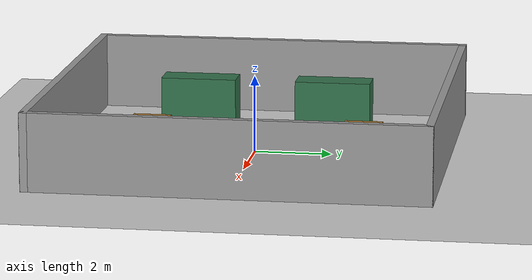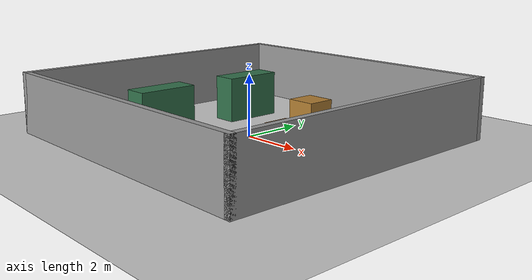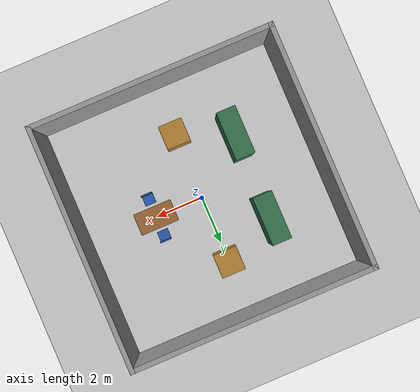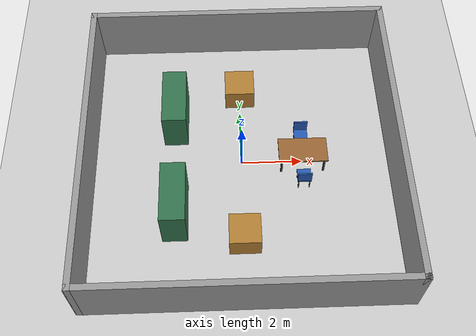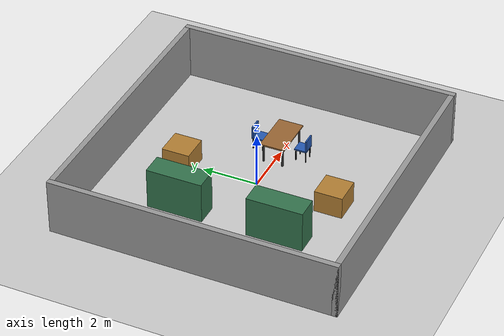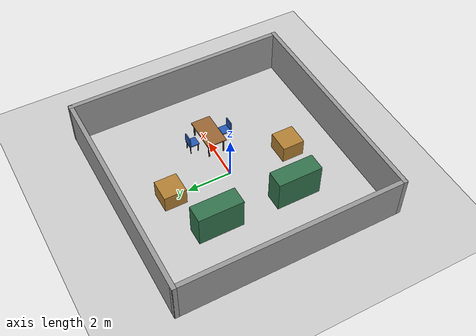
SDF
<?xml version="1.0" ?>
<sdf version="1.8">
  <world name="obstacles_world">
    <!-- GAZEBO HARMONIC WORLD SYSTEM PLUGINS                                  -->
    <plugin
      filename="gz-sim-physics-system"
      name="gz::sim::systems::Physics">
    </plugin>
    <plugin
      filename="gz-sim-user-commands-system"
      name="gz::sim::systems::UserCommands">
    </plugin>
    <plugin
      filename="gz-sim-scene-broadcaster-system"
      name="gz::sim::systems::SceneBroadcaster">
    </plugin>
    <plugin
      filename="gz-sim-sensors-system"
      name="gz::sim::systems::Sensors">
      <render_engine>ogre2</render_engine>
    </plugin>
    <plugin
      filename="gz-sim-imu-system"
      name="gz::sim::systems::Imu">
    </plugin>

    <!-- World Physics Configuration -->
    <physics name="1ms" type="ignored">
      <max_step_size>0.001</max_step_size>
      <real_time_factor>1.0</real_time_factor>
    </physics>

    <!-- Ambient Lighting & Sun -->
    <light type="directional" name="sun">
      <cast_shadows>true</cast_shadows>
      <pose>0 0 10 0 0 0</pose>
      <diffuse>0.8 0.8 0.8 1</diffuse>
      <specular>0.2 0.2 0.2 1</specular>
      <direction>-0.5 0.1 -0.9</direction>
    </light>

    <!-- Ground Plane -->
    <model name="ground_plane">
      <static>true</static>
      <link name="link">
        <collision name="collision">
          <geometry>
            <plane>
              <normal>0 0 1</normal>
              <size>100 100</size>
            </plane>
          </geometry>
          <surface>
            <friction>
              <ode>
                <mu>100</mu>
                <mu2>50</mu2>
              </ode>
            </friction>
          </surface>
        </collision>
        <visual name="visual">
          <geometry>
            <plane>
              <normal>0 0 1</normal>
              <size>100 100</size>
            </plane>
          </geometry>
          <material>
            <ambient>0.8 0.8 0.8 1</ambient>
            <diffuse>0.8 0.8 0.8 1</diffuse>
            <specular>0.8 0.8 0.8 1</specular>
          </material>
        </visual>
      </link>
    </model>

    <!-- ARENA BOUNDARY WALLS (10m x 10m enclosure)                             -->

    <!-- North Wall -->
    <model name="wall_north">
      <static>true</static>
      <pose>0 5 1 0 0 0</pose>
      <link name="link">
        <collision name="col"><geometry><box><size>10.2 0.2 2</size></box></geometry></collision>
        <visual name="vis"><geometry><box><size>10.2 0.2 2</size></box></geometry>
          <material><ambient>0.6 0.6 0.6 1</ambient><diffuse>0.6 0.6 0.6 1</diffuse></material>
        </visual>
      </link>
    </model>

    <!-- South Wall -->
    <model name="wall_south">
      <static>true</static>
      <pose>0 -5 1 0 0 0</pose>
      <link name="link">
        <collision name="col"><geometry><box><size>10.2 0.2 2</size></box></geometry></collision>
        <visual name="vis"><geometry><box><size>10.2 0.2 2</size></box></geometry>
          <material><ambient>0.6 0.6 0.6 1</ambient><diffuse>0.6 0.6 0.6 1</diffuse></material>
        </visual>
      </link>
    </model>

    <!-- East Wall -->
    <model name="wall_east">
      <static>true</static>
      <pose>5 0 1 0 0 0</pose>
      <link name="link">
        <collision name="col"><geometry><box><size>0.2 10.2 2</size></box></geometry></collision>
        <visual name="vis"><geometry><box><size>0.2 10.2 2</size></box></geometry>
          <material><ambient>0.6 0.6 0.6 1</ambient><diffuse>0.6 0.6 0.6 1</diffuse></material>
        </visual>
      </link>
    </model>

    <!-- West Wall -->
    <model name="wall_west">
      <static>true</static>
      <pose>-5 0 1 0 0 0</pose>
      <link name="link">
        <collision name="col"><geometry><box><size>0.2 10.2 2</size></box></geometry></collision>
        <visual name="vis"><geometry><box><size>0.2 10.2 2</size></box></geometry>
          <material><ambient>0.6 0.6 0.6 1</ambient><diffuse>0.6 0.6 0.6 1</diffuse></material>
        </visual>
      </link>
    </model>

    <!-- WAREHOUSE OBSTACLES: TABLE, CHAIRS, STORAGE RACKS, & CARGO PALLETS     -->
    <!-- Center (0, 0) remains clear for robot spawning                          -->

    <!-- 1. Warehouse Work Table (Surface + 4 Legs) -->
    <model name="warehouse_table">
      <static>true</static>
      <pose>2.0 0.0 0 0 0 0</pose>
      <link name="table_link">
        <!-- Table Top -->
        <collision name="top_col">
          <pose>0 0 0.72 0 0 0</pose>
          <geometry><box><size>1.6 0.9 0.05</size></box></geometry>
        </collision>
        <visual name="top_vis">
          <pose>0 0 0.72 0 0 0</pose>
          <geometry><box><size>1.6 0.9 0.05</size></box></geometry>
          <material><ambient>0.6 0.4 0.2 1</ambient><diffuse>0.6 0.4 0.2 1</diffuse></material>
        </visual>
        <!-- Leg 1 -->
        <collision name="leg1_col">
          <pose>0.7 0.35 0.35 0 0 0</pose>
          <geometry><cylinder><radius>0.035</radius><length>0.70</length></cylinder></geometry>
        </collision>
        <visual name="leg1_vis">
          <pose>0.7 0.35 0.35 0 0 0</pose>
          <geometry><cylinder><radius>0.035</radius><length>0.70</length></cylinder></geometry>
          <material><ambient>0.2 0.2 0.2 1</ambient><diffuse>0.2 0.2 0.2 1</diffuse></material>
        </visual>
        <!-- Leg 2 -->
        <collision name="leg2_col">
          <pose>0.7 -0.35 0.35 0 0 0</pose>
          <geometry><cylinder><radius>0.035</radius><length>0.70</length></cylinder></geometry>
        </collision>
        <visual name="leg2_vis">
          <pose>0.7 -0.35 0.35 0 0 0</pose>
          <geometry><cylinder><radius>0.035</radius><length>0.70</length></cylinder></geometry>
          <material><ambient>0.2 0.2 0.2 1</ambient><diffuse>0.2 0.2 0.2 1</diffuse></material>
        </visual>
        <!-- Leg 3 -->
        <collision name="leg3_col">
          <pose>-0.7 0.35 0.35 0 0 0</pose>
          <geometry><cylinder><radius>0.035</radius><length>0.70</length></cylinder></geometry>
        </collision>
        <visual name="leg3_vis">
          <pose>-0.7 0.35 0.35 0 0 0</pose>
          <geometry><cylinder><radius>0.035</radius><length>0.70</length></cylinder></geometry>
          <material><ambient>0.2 0.2 0.2 1</ambient><diffuse>0.2 0.2 0.2 1</diffuse></material>
        </visual>
        <!-- Leg 4 -->
        <collision name="leg4_col">
          <pose>-0.7 -0.35 0.35 0 0 0</pose>
          <geometry><cylinder><radius>0.035</radius><length>0.70</length></cylinder></geometry>
        </collision>
        <visual name="leg4_vis">
          <pose>-0.7 -0.35 0.35 0 0 0</pose>
          <geometry><cylinder><radius>0.035</radius><length>0.70</length></cylinder></geometry>
          <material><ambient>0.2 0.2 0.2 1</ambient><diffuse>0.2 0.2 0.2 1</diffuse></material>
        </visual>
      </link>
    </model>

    <!-- 2. Chair North of Table -->
    <model name="chair_north">
      <static>true</static>
      <pose>2.0 0.80 0 0 0 0</pose>
      <link name="chair_link">
        <!-- Seat -->
        <collision name="seat_col">
          <pose>0 0 0.45 0 0 0</pose>
          <geometry><box><size>0.45 0.45 0.05</size></box></geometry>
        </collision>
        <visual name="seat_vis">
          <pose>0 0 0.45 0 0 0</pose>
          <geometry><box><size>0.45 0.45 0.05</size></box></geometry>
          <material><ambient>0.15 0.35 0.7 1</ambient><diffuse>0.15 0.35 0.7 1</diffuse></material>
        </visual>
        <!-- Backrest -->
        <collision name="back_col">
          <pose>0 0.20 0.68 0 0 0</pose>
          <geometry><box><size>0.45 0.05 0.42</size></box></geometry>
        </collision>
        <visual name="back_vis">
          <pose>0 0.20 0.68 0 0 0</pose>
          <geometry><box><size>0.45 0.05 0.42</size></box></geometry>
          <material><ambient>0.15 0.35 0.7 1</ambient><diffuse>0.15 0.35 0.7 1</diffuse></material>
        </visual>
        <!-- 4 Legs -->
        <collision name="l1_col"><pose>0.18 0.18 0.22 0 0 0</pose><geometry><cylinder><radius>0.02</radius><length>0.44</length></cylinder></geometry></collision>
        <visual name="l1_vis"><pose>0.18 0.18 0.22 0 0 0</pose><geometry><cylinder><radius>0.02</radius><length>0.44</length></cylinder></geometry><material><ambient>0.2 0.2 0.2 1</ambient><diffuse>0.2 0.2 0.2 1</diffuse></material></visual>
        <collision name="l2_col"><pose>0.18 -0.18 0.22 0 0 0</pose><geometry><cylinder><radius>0.02</radius><length>0.44</length></cylinder></geometry></collision>
        <visual name="l2_vis"><pose>0.18 -0.18 0.22 0 0 0</pose><geometry><cylinder><radius>0.02</radius><length>0.44</length></cylinder></geometry><material><ambient>0.2 0.2 0.2 1</ambient><diffuse>0.2 0.2 0.2 1</diffuse></material></visual>
        <collision name="l3_col"><pose>-0.18 0.18 0.22 0 0 0</pose><geometry><cylinder><radius>0.02</radius><length>0.44</length></cylinder></geometry></collision>
        <visual name="l3_vis"><pose>-0.18 0.18 0.22 0 0 0</pose><geometry><cylinder><radius>0.02</radius><length>0.44</length></cylinder></geometry><material><ambient>0.2 0.2 0.2 1</ambient><diffuse>0.2 0.2 0.2 1</diffuse></material></visual>
        <collision name="l4_col"><pose>-0.18 -0.18 0.22 0 0 0</pose><geometry><cylinder><radius>0.02</radius><length>0.44</length></cylinder></geometry></collision>
        <visual name="l4_vis"><pose>-0.18 -0.18 0.22 0 0 0</pose><geometry><cylinder><radius>0.02</radius><length>0.44</length></cylinder></geometry><material><ambient>0.2 0.2 0.2 1</ambient><diffuse>0.2 0.2 0.2 1</diffuse></material></visual>
      </link>
    </model>

    <!-- 3. Chair South of Table -->
    <model name="chair_south">
      <static>true</static>
      <pose>2.0 -0.80 0 0 0 0</pose>
      <link name="chair_link">
        <!-- Seat -->
        <collision name="seat_col">
          <pose>0 0 0.45 0 0 0</pose>
          <geometry><box><size>0.45 0.45 0.05</size></box></geometry>
        </collision>
        <visual name="seat_vis">
          <pose>0 0 0.45 0 0 0</pose>
          <geometry><box><size>0.45 0.45 0.05</size></box></geometry>
          <material><ambient>0.15 0.35 0.7 1</ambient><diffuse>0.15 0.35 0.7 1</diffuse></material>
        </visual>
        <!-- Backrest -->
        <collision name="back_col">
          <pose>0 -0.20 0.68 0 0 0</pose>
          <geometry><box><size>0.45 0.05 0.42</size></box></geometry>
        </collision>
        <visual name="back_vis">
          <pose>0 -0.20 0.68 0 0 0</pose>
          <geometry><box><size>0.45 0.05 0.42</size></box></geometry>
          <material><ambient>0.15 0.35 0.7 1</ambient><diffuse>0.15 0.35 0.7 1</diffuse></material>
        </visual>
        <!-- 4 Legs -->
        <collision name="l1_col"><pose>0.18 0.18 0.22 0 0 0</pose><geometry><cylinder><radius>0.02</radius><length>0.44</length></cylinder></geometry></collision>
        <visual name="l1_vis"><pose>0.18 0.18 0.22 0 0 0</pose><geometry><cylinder><radius>0.02</radius><length>0.44</length></cylinder></geometry><material><ambient>0.2 0.2 0.2 1</ambient><diffuse>0.2 0.2 0.2 1</diffuse></material></visual>
        <collision name="l2_col"><pose>0.18 -0.18 0.22 0 0 0</pose><geometry><cylinder><radius>0.02</radius><length>0.44</length></cylinder></geometry></collision>
        <visual name="l2_vis"><pose>0.18 -0.18 0.22 0 0 0</pose><geometry><cylinder><radius>0.02</radius><length>0.44</length></cylinder></geometry><material><ambient>0.2 0.2 0.2 1</ambient><diffuse>0.2 0.2 0.2 1</diffuse></material></visual>
        <collision name="l3_col"><pose>-0.18 0.18 0.22 0 0 0</pose><geometry><cylinder><radius>0.02</radius><length>0.44</length></cylinder></geometry></collision>
        <visual name="l3_vis"><pose>-0.18 0.18 0.22 0 0 0</pose><geometry><cylinder><radius>0.02</radius><length>0.44</length></cylinder></geometry><material><ambient>0.2 0.2 0.2 1</ambient><diffuse>0.2 0.2 0.2 1</diffuse></material></visual>
        <collision name="l4_col"><pose>-0.18 -0.18 0.22 0 0 0</pose><geometry><cylinder><radius>0.02</radius><length>0.44</length></cylinder></geometry></collision>
        <visual name="l4_vis"><pose>-0.18 -0.18 0.22 0 0 0</pose><geometry><cylinder><radius>0.02</radius><length>0.44</length></cylinder></geometry><material><ambient>0.2 0.2 0.2 1</ambient><diffuse>0.2 0.2 0.2 1</diffuse></material></visual>
      </link>
    </model>

    <!-- 4. Industrial Storage Rack North-West -->
    <model name="storage_rack_nw">
      <static>true</static>
      <pose>-2.2 1.8 0.75 0 0 0</pose>
      <link name="rack_link">
        <collision name="col"><geometry><box><size>0.8 2.0 1.5</size></box></geometry></collision>
        <visual name="vis">
          <geometry><box><size>0.8 2.0 1.5</size></box></geometry>
          <material><ambient>0.2 0.45 0.3 1</ambient><diffuse>0.2 0.45 0.3 1</diffuse></material>
        </visual>
      </link>
    </model>

    <!-- 5. Industrial Storage Rack South-West -->
    <model name="storage_rack_sw">
      <static>true</static>
      <pose>-2.2 -1.8 0.75 0 0 0</pose>
      <link name="rack_link">
        <collision name="col"><geometry><box><size>0.8 2.0 1.5</size></box></geometry></collision>
        <visual name="vis">
          <geometry><box><size>0.8 2.0 1.5</size></box></geometry>
          <material><ambient>0.2 0.45 0.3 1</ambient><diffuse>0.2 0.45 0.3 1</diffuse></material>
        </visual>
      </link>
    </model>

    <!-- 6. Stacked Cargo Pallet North -->
    <model name="cargo_pallet_north">
      <static>true</static>
      <pose>0.0 2.8 0.4 0 0 0</pose>
      <link name="pallet_link">
        <collision name="col"><geometry><box><size>1.0 1.0 0.8</size></box></geometry></collision>
        <visual name="vis">
          <geometry><box><size>1.0 1.0 0.8</size></box></geometry>
          <material><ambient>0.7 0.5 0.2 1</ambient><diffuse>0.7 0.5 0.2 1</diffuse></material>
        </visual>
      </link>
    </model>

    <!-- 7. Stacked Cargo Pallet South -->
    <model name="cargo_pallet_south">
      <static>true</static>
      <pose>0.0 -2.8 0.4 0 0 0</pose>
      <link name="pallet_link">
        <collision name="col"><geometry><box><size>1.0 1.0 0.8</size></box></geometry></collision>
        <visual name="vis">
          <geometry><box><size>1.0 1.0 0.8</size></box></geometry>
          <material><ambient>0.7 0.5 0.2 1</ambient><diffuse>0.7 0.5 0.2 1</diffuse></material>
        </visual>
      </link>
    </model>

  </world>
</sdf>
